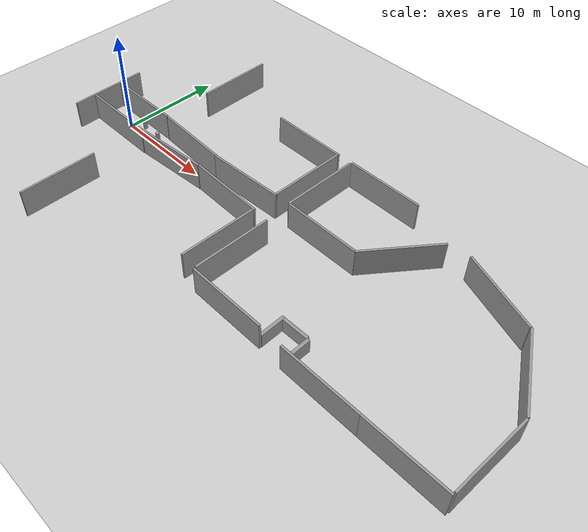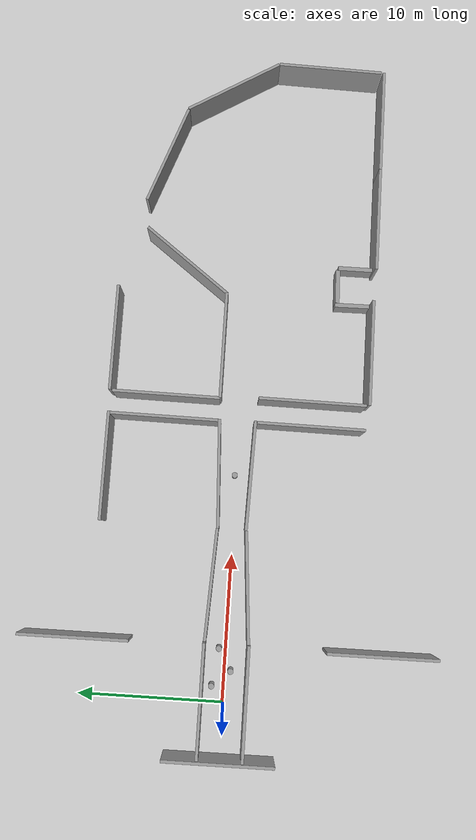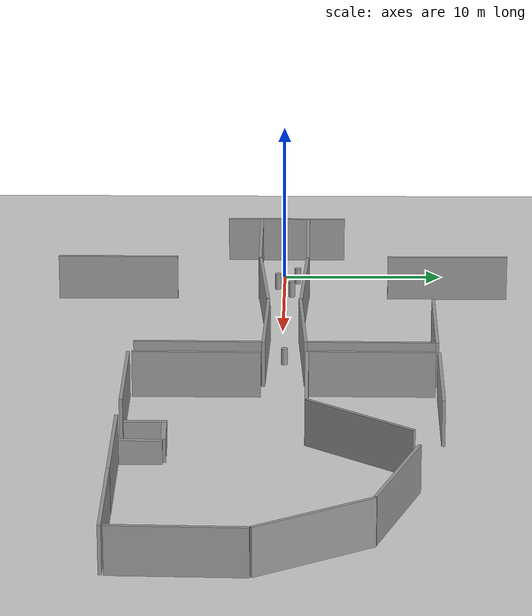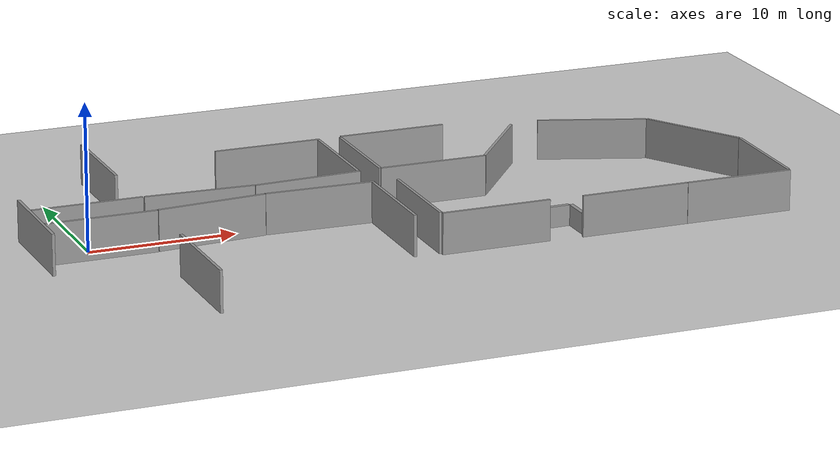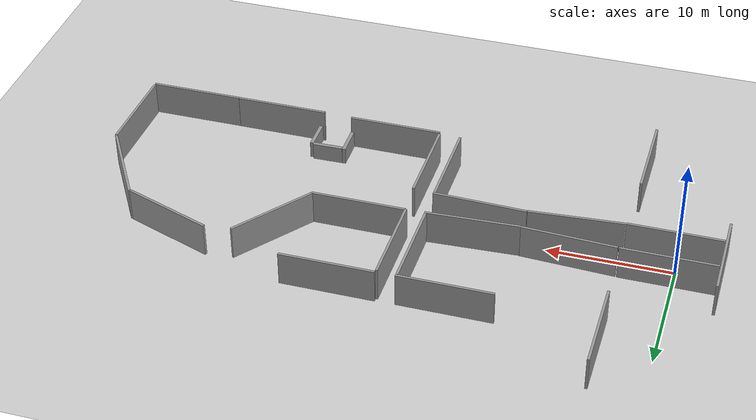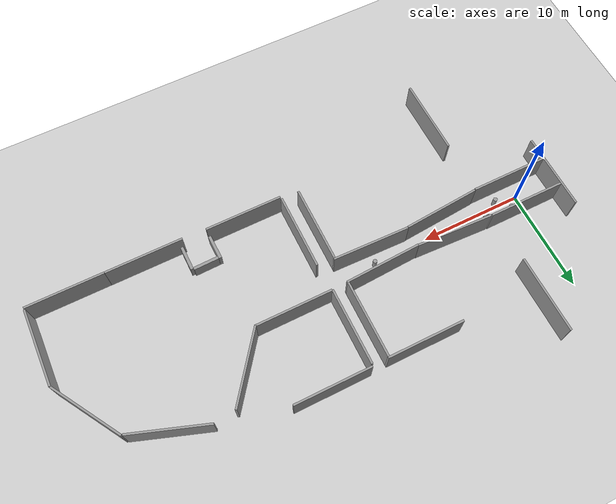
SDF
<sdf version="1.7">
 <world name="default">
  <plugin name="gazebo_ros_state" filename="libgazebo_ros_state.so">
   <ros><namespace>/test</namespace><argument>model_states:=model_states_demo</argument></ros>
   <update_rate>1.0</update_rate>
  </plugin>
  <light name="sun" type="directional">
   <pose>0 0 10 0 -0 0</pose>
   <diffuse>0.8 0.8 0.8 1</diffuse>
   <specular>0.2 0.2 0.2 1</specular>
   <attenuation>
    <range>1000</range>
    <constant>0.9</constant>
    <linear>0.01</linear>
    <quadratic>0.001</quadratic>
   </attenuation>
   <direction>-0.5 0.1 -0.9</direction>
   <spot><inner_angle>0</inner_angle><outer_angle>0</outer_angle><falloff>0</falloff></spot>
  </light>
  <model name="ground_plane">
   <static>1</static>
   <link name="link">
    <collision name="collision">
     <geometry><plane><normal>0 0 1</normal><size>100 100</size></plane></geometry>
     <surface><friction><ode><mu>100</mu><mu2>50</mu2></ode></friction></surface>
    </collision>
    <visual name="visual">
     <cast_shadows>0</cast_shadows>
     <geometry><plane><normal>0 0 1</normal><size>100 100</size></plane></geometry>
     <material>
      <script><uri>file://media/materials/scripts/gazebo.material</uri><name>Gazebo/Grey</name></script>
     </material>
    </visual>
   </link>
  </model>
  <gravity>0 0 -9.8</gravity>
  <magnetic_field>6e-06 2.3e-05 -4.2e-05</magnetic_field>
  <atmosphere type="adiabatic"/>
  <physics type="ode">
   <max_step_size>0.001</max_step_size>
   <real_time_factor>1</real_time_factor>
   <real_time_update_rate>1000</real_time_update_rate>
  </physics>
  <scene><ambient>0.4 0.4 0.4 1</ambient><background>0.7 0.7 0.7 1</background><shadows>0</shadows></scene>
  <spherical_coordinates>
   <surface_model>EARTH_WGS84</surface_model>
   <latitude_deg>0</latitude_deg>
   <longitude_deg>0</longitude_deg>
   <elevation>0</elevation>
   <heading_deg>0</heading_deg>
  </spherical_coordinates>
  <model name="grey_wall">
   <static>1</static>
   <link name="link">
    <pose>0 0 1.4 0 -0 0</pose>
    <collision name="collision"><geometry><box><size>7.5 0.2 2.8</size></box></geometry></collision>
    <visual name="visual">
     <cast_shadows>0</cast_shadows>
     <geometry><box><size>7.5 0.2 2.8</size></box></geometry>
     <material>
      <script>
       <uri>model://grey_wall/materials/scripts</uri>
       <uri>model://grey_wall/materials/textures</uri>
       <name>vrc/grey_wall</name>
      </script>
     </material>
    </visual>
   </link>
   <pose>0.45 1.5 0 0 -0 0</pose>
  </model>
  <model name="grey_wall_clone">
   <static>1</static>
   <link name="link">
    <pose>0 0 1.4 0 -0 0</pose>
    <collision name="collision"><geometry><box><size>7.5 0.2 2.8</size></box></geometry></collision>
    <visual name="visual">
     <cast_shadows>0</cast_shadows>
     <geometry><box><size>7.5 0.2 2.8</size></box></geometry>
     <material>
      <script>
       <uri>model://grey_wall/materials/scripts</uri>
       <uri>model://grey_wall/materials/textures</uri>
       <name>vrc/grey_wall</name>
      </script>
     </material>
    </visual>
   </link>
   <pose>0.45 -1.5 0 0 -0 0</pose>
  </model>
  <model name="grey_wall_clone_0">
   <static>1</static>
   <link name="link">
    <pose>0 0 1.4 0 -0 0</pose>
    <collision name="collision"><geometry><box><size>7.5 0.2 2.8</size></box></geometry></collision>
    <visual name="visual">
     <cast_shadows>0</cast_shadows>
     <geometry><box><size>7.5 0.2 2.8</size></box></geometry>
     <material>
      <script>
       <uri>model://grey_wall/materials/scripts</uri>
       <uri>model://grey_wall/materials/textures</uri>
       <name>vrc/grey_wall</name>
      </script>
     </material>
    </visual>
   </link>
   <pose>8.0405 1.2886 0 0 0 -0.048757</pose>
  </model>
  <model name="grey_wall_clone_1">
   <static>1</static>
   <link name="link">
    <pose>0 0 1.4 0 -0 0</pose>
    <collision name="collision"><geometry><box><size>7.5 0.2 2.8</size></box></geometry></collision>
    <visual name="visual">
     <cast_shadows>0</cast_shadows>
     <geometry><box><size>7.5 0.2 2.8</size></box></geometry>
     <material>
      <script>
       <uri>model://grey_wall/materials/scripts</uri>
       <uri>model://grey_wall/materials/textures</uri>
       <name>vrc/grey_wall</name>
      </script>
     </material>
    </visual>
   </link>
   <pose>7.99265 -1.17223 0 0 -0 0.076229</pose>
  </model>
  <model name="grey_wall_clone_2">
   <static>1</static>
   <link name="link">
    <pose>0 0 1.4 0 -0 0</pose>
    <collision name="collision"><geometry><box><size>7.5 0.2 2.8</size></box></geometry></collision>
    <visual name="visual">
     <cast_shadows>0</cast_shadows>
     <geometry><box><size>7.5 0.2 2.8</size></box></geometry>
     <material>
      <script>
       <uri>model://grey_wall/materials/scripts</uri>
       <uri>model://grey_wall/materials/textures</uri>
       <name>vrc/grey_wall</name>
      </script>
     </material>
    </visual>
   </link>
   <pose>15.4908 1.24997 0 0 -0 0.047505</pose>
  </model>
  <model name="grey_wall_clone_3">
   <static>1</static>
   <link name="link">
    <pose>0 0 1.4 0 -0 0</pose>
    <collision name="collision"><geometry><box><size>7.5 0.2 2.8</size></box></geometry></collision>
    <visual name="visual">
     <cast_shadows>0</cast_shadows>
     <geometry><box><size>7.5 0.2 2.8</size></box></geometry>
     <material>
      <script>
       <uri>model://grey_wall/materials/scripts</uri>
       <uri>model://grey_wall/materials/textures</uri>
       <name>vrc/grey_wall</name>
      </script>
     </material>
    </visual>
   </link>
   <pose>15.5134 -0.959954 0 0 0 -0.028174</pose>
  </model>
  <model name="grey_wall_clone_4">
   <static>1</static>
   <link name="link">
    <pose>0 0 1.4 0 -0 0</pose>
    <collision name="collision"><geometry><box><size>7.5 0.2 2.8</size></box></geometry></collision>
    <visual name="visual">
     <cast_shadows>0</cast_shadows>
     <geometry><box><size>7.5 0.2 2.8</size></box></geometry>
     <material>
      <script>
       <uri>model://grey_wall/materials/scripts</uri>
       <uri>model://grey_wall/materials/textures</uri>
       <name>vrc/grey_wall</name>
      </script>
     </material>
    </visual>
   </link>
   <pose>19.1831 5.27057 0 0 0 -1.58093</pose>
  </model>
  <model name="grey_wall_clone_4_clone">
   <static>1</static>
   <link name="link">
    <pose>0 0 1.4 0 -0 0</pose>
    <collision name="collision"><geometry><box><size>7.5 0.2 2.8</size></box></geometry></collision>
    <visual name="visual">
     <cast_shadows>0</cast_shadows>
     <geometry><box><size>7.5 0.2 2.8</size></box></geometry>
     <material>
      <script>
       <uri>model://grey_wall/materials/scripts</uri>
       <uri>model://grey_wall/materials/textures</uri>
       <name>vrc/grey_wall</name>
      </script>
     </material>
    </visual>
   </link>
   <pose>19.1157 -4.93014 0 0 0 -1.58093</pose>
  </model>
  <model name="grey_wall_clone_4_clone_0">
   <static>1</static>
   <link name="link">
    <pose>0 0 1.4 0 -0 0</pose>
    <collision name="collision"><geometry><box><size>7.5 0.2 2.8</size></box></geometry></collision>
    <visual name="visual">
     <cast_shadows>0</cast_shadows>
     <geometry><box><size>7.5 0.2 2.8</size></box></geometry>
     <material>
      <script>
       <uri>model://grey_wall/materials/scripts</uri>
       <uri>model://grey_wall/materials/textures</uri>
       <name>vrc/grey_wall</name>
      </script>
     </material>
    </visual>
   </link>
   <pose>20.84 -4.94754 0 0 0 -1.58093</pose>
  </model>
  <model name="grey_wall_clone_4_clone_1">
   <static>1</static>
   <link name="link">
    <pose>0 0 1.4 0 -0 0</pose>
    <collision name="collision"><geometry><box><size>7.5 0.2 2.8</size></box></geometry></collision>
    <visual name="visual">
     <cast_shadows>0</cast_shadows>
     <geometry><box><size>7.5 0.2 2.8</size></box></geometry>
     <material>
      <script>
       <uri>model://grey_wall/materials/scripts</uri>
       <uri>model://grey_wall/materials/textures</uri>
       <name>vrc/grey_wall</name>
      </script>
     </material>
    </visual>
   </link>
   <pose>20.75 5.25 0 0 0 -1.58093</pose>
  </model>
  <model name="grey_wall_clone_3_clone">
   <static>1</static>
   <link name="link">
    <pose>0 0 1.4 0 -0 0</pose>
    <collision name="collision"><geometry><box><size>7.5 0.2 2.8</size></box></geometry></collision>
    <visual name="visual">
     <cast_shadows>0</cast_shadows>
     <geometry><box><size>7.5 0.2 2.8</size></box></geometry>
     <material>
      <script>
       <uri>model://grey_wall/materials/scripts</uri>
       <uri>model://grey_wall/materials/textures</uri>
       <name>vrc/grey_wall</name>
      </script>
     </material>
    </visual>
   </link>
   <pose>24.5989 -8.90216 0 0 -0 0</pose>
  </model>
  <model name="grey_wall_clone_3_clone_0">
   <static>1</static>
   <link name="link">
    <pose>0 0 1.4 0 -0 0</pose>
    <collision name="collision"><geometry><box><size>7.5 0.2 2.8</size></box></geometry></collision>
    <visual name="visual">
     <cast_shadows>0</cast_shadows>
     <geometry><box><size>7.5 0.2 2.8</size></box></geometry>
     <material>
      <script>
       <uri>model://grey_wall/materials/scripts</uri>
       <uri>model://grey_wall/materials/textures</uri>
       <name>vrc/grey_wall</name>
      </script>
     </material>
    </visual>
   </link>
   <pose>24.5 1.496 0 0 -0 0</pose>
  </model>
  <model name="grey_wall_clone_5">
   <static>1</static>
   <link name="link">
    <pose>0 0 1.4 0 -0 0</pose>
    <collision name="collision"><geometry><box><size>7.5 0.2 2.8</size></box></geometry></collision>
    <visual name="visual">
     <cast_shadows>0</cast_shadows>
     <geometry><box><size>7.5 0.2 2.8</size></box></geometry>
     <material>
      <script>
       <uri>model://grey_wall/materials/scripts</uri>
       <uri>model://grey_wall/materials/textures</uri>
       <name>vrc/grey_wall</name>
      </script>
     </material>
    </visual>
   </link>
   <pose>30.4598 4.43716 0 0 -0 0.920275</pose>
  </model>
  <model name="grey_wall_clone_3_clone_clone_clone">
   <static>1</static>
   <link name="link">
    <pose>0 0 1.4 0 -0 0</pose>
    <collision name="collision"><geometry><box><size>7.5 0.2 2.8</size></box></geometry></collision>
    <visual name="visual">
     <cast_shadows>0</cast_shadows>
     <geometry><box><size>7.5 0.2 2.8</size></box></geometry>
     <material>
      <script>
       <uri>model://grey_wall/materials/scripts</uri>
       <uri>model://grey_wall/materials/textures</uri>
       <name>vrc/grey_wall</name>
      </script>
     </material>
    </visual>
   </link>
   <pose>34.3949 -9.00663 0 0 -0 0</pose>
  </model>
  <model name="grey_wall_clone_5_clone">
   <static>1</static>
   <link name="link">
    <pose>0 0 1.4 0 -0 0</pose>
    <collision name="collision"><geometry><box><size>7.5 0.2 2.8</size></box></geometry></collision>
    <visual name="visual">
     <cast_shadows>0</cast_shadows>
     <geometry><box><size>7.5 0.2 2.8</size></box></geometry>
     <material>
      <script>
       <uri>model://grey_wall/materials/scripts</uri>
       <uri>model://grey_wall/materials/textures</uri>
       <name>vrc/grey_wall</name>
      </script>
     </material>
    </visual>
   </link>
   <pose>38.3396 6.3954 0 0 0 -0.342462</pose>
  </model>
  <model name="grey_wall_clone_3_clone_clone_clone_clone">
   <static>1</static>
   <link name="link">
    <pose>0 0 1.4 0 -0 0</pose>
    <collision name="collision"><geometry><box><size>7.5 0.2 2.8</size></box></geometry></collision>
    <visual name="visual">
     <cast_shadows>0</cast_shadows>
     <geometry><box><size>7.5 0.2 2.8</size></box></geometry>
     <material>
      <script>
       <uri>model://grey_wall/materials/scripts</uri>
       <uri>model://grey_wall/materials/textures</uri>
       <name>vrc/grey_wall</name>
      </script>
     </material>
    </visual>
   </link>
   <pose>43.8876 1.94202 0 0 0 -1.02844</pose>
  </model>
  <model name="grey_wall_clone_3_clone_clone_clone_clone_2">
   <static>1</static>
   <link name="link">
    <pose>0 0 1.4 0 -0 0</pose>
    <collision name="collision"><geometry><box><size>7.5 0.2 2.8</size></box></geometry></collision>
    <visual name="visual">
     <cast_shadows>0</cast_shadows>
     <geometry><box><size>7.5 0.2 2.8</size></box></geometry>
     <material>
      <script>
       <uri>model://grey_wall/materials/scripts</uri>
       <uri>model://grey_wall/materials/textures</uri>
       <name>vrc/grey_wall</name>
      </script>
     </material>
    </visual>
   </link>
   <pose>45.7411 -5.07625 0 0 -0 1.54097</pose>
  </model>
  <model name="grey_wall_0">
   <static>1</static>
   <link name="link">
    <pose>0 0 1.4 0 -0 0</pose>
    <collision name="collision"><geometry><box><size>7.5 0.2 2.8</size></box></geometry></collision>
    <visual name="visual">
     <cast_shadows>0</cast_shadows>
     <geometry><box><size>7.5 0.2 2.8</size></box></geometry>
     <material>
      <script>
       <uri>model://grey_wall/materials/scripts</uri>
       <uri>model://grey_wall/materials/textures</uri>
       <name>vrc/grey_wall</name>
      </script>
     </material>
    </visual>
   </link>
   <pose>24.6039 9.1936 0 0 -0 0</pose>
  </model>
  <model name="grey_wall_clone_4_clone_clone">
   <static>1</static>
   <link name="link">
    <pose>0 0 1.4 0 -0 0</pose>
    <collision name="collision"><geometry><box><size>7.5 0.2 2.8</size></box></geometry></collision>
    <visual name="visual">
     <cast_shadows>0</cast_shadows>
     <geometry><box><size>7.5 0.2 2.8</size></box></geometry>
     <material>
      <script>
       <uri>model://grey_wall/materials/scripts</uri>
       <uri>model://grey_wall/materials/textures</uri>
       <name>vrc/grey_wall</name>
      </script>
     </material>
    </visual>
   </link>
   <pose>-3.42198 0.097688 0 0 0 -1.5684</pose>
  </model>
  <model name="grey_wall_clone_3_clone_clone_clone_clone_3">
   <static>1</static>
   <link name="link">
    <pose>0 0 1.4 0 -0 0</pose>
    <collision name="collision"><geometry><box><size>7.5 0.2 2.8</size></box></geometry></collision>
    <visual name="visual">
     <cast_shadows>0</cast_shadows>
     <geometry><box><size>7.5 0.2 2.8</size></box></geometry>
     <material>
      <script>
       <uri>model://grey_wall/materials/scripts</uri>
       <uri>model://grey_wall/materials/textures</uri>
       <name>vrc/grey_wall</name>
      </script>
     </material>
    </visual>
   </link>
   <pose>41.9009 -9.0149 0 0 -0 0</pose>
  </model>
  <model name="grey_wall_clone_4_clone_clone_clone">
   <static>1</static>
   <link name="link">
    <pose>0 0 1.4 0 -0 0</pose>
    <collision name="collision"><geometry><box><size>7.5 0.2 2.8</size></box></geometry></collision>
    <visual name="visual">
     <cast_shadows>0</cast_shadows>
     <geometry><box><size>7.5 0.2 2.8</size></box></geometry>
     <material>
      <script>
       <uri>model://grey_wall/materials/scripts</uri>
       <uri>model://grey_wall/materials/textures</uri>
       <name>vrc/grey_wall</name>
      </script>
     </material>
    </visual>
   </link>
   <pose>4.01935 10.2742 0 0 0 -1.5684</pose>
  </model>
  <model name="grey_wall_clone_4_clone_clone_clone_clone">
   <static>1</static>
   <link name="link">
    <pose>0 0 1.4 0 -0 0</pose>
    <collision name="collision"><geometry><box><size>7.5 0.2 2.8</size></box></geometry></collision>
    <visual name="visual">
     <cast_shadows>0</cast_shadows>
     <geometry><box><size>7.5 0.2 2.8</size></box></geometry>
     <material>
      <script>
       <uri>model://grey_wall/materials/scripts</uri>
       <uri>model://grey_wall/materials/textures</uri>
       <name>vrc/grey_wall</name>
      </script>
     </material>
    </visual>
   </link>
   <pose>4.02069 -10.441 0 0 0 -1.5684</pose>
  </model>
  <model name="grey_wall_0_clone">
   <static>1</static>
   <link name="link">
    <pose>0 0 1.4 0 -0 0</pose>
    <collision name="collision"><geometry><box><size>7.5 0.2 2.8</size></box></geometry></collision>
    <visual name="visual">
     <cast_shadows>0</cast_shadows>
     <geometry><box><size>7.5 0.2 2.8</size></box></geometry>
     <material>
      <script>
       <uri>model://grey_wall/materials/scripts</uri>
       <uri>model://grey_wall/materials/textures</uri>
       <name>vrc/grey_wall</name>
      </script>
     </material>
    </visual>
   </link>
   <pose>15.571 9.12885 0 0 -0 0</pose>
  </model>
  <model name="unit_box_clone_0">
   <static>1</static>
   <pose>30.9687 -7.67485 0.710181 1e-06 -2e-05 -1.57248</pose>
   <link name="link">
    <inertial>
     <mass>1</mass>
     <inertia>
      <ixx>0.166667</ixx>
      <ixy>0</ixy>
      <ixz>0</ixz>
      <iyy>0.166667</iyy>
      <iyz>0</iyz>
      <izz>0.166667</izz>
     </inertia>
    </inertial>
    <collision name="collision"><geometry><box><size>2.44271 0.295039 1.42041</size></box></geometry></collision>
    <visual name="visual">
     <geometry><box><size>2.44271 0.295039 1.42041</size></box></geometry>
     <material>
      <script><name>Gazebo/Grey</name><uri>file://media/materials/scripts/gazebo.material</uri></script>
     </material>
    </visual>
   </link>
  </model>
  <model name="unit_box_clone_0_clone">
   <static>1</static>
   <pose>28.2223 -7.54904 0.710181 1e-06 2e-05 -1.56178</pose>
   <link name="link">
    <inertial>
     <mass>1</mass>
     <inertia>
      <ixx>0.166667</ixx>
      <ixy>0</ixy>
      <ixz>0</ixz>
      <iyy>0.166667</iyy>
      <iyz>0</iyz>
      <izz>0.166667</izz>
     </inertia>
    </inertial>
    <collision name="collision"><geometry><box><size>2.44271 0.295039 1.42041</size></box></geometry></collision>
    <visual name="visual">
     <geometry><box><size>2.44271 0.295039 1.42041</size></box></geometry>
     <material>
      <script><name>Gazebo/Grey</name><uri>file://media/materials/scripts/gazebo.material</uri></script>
     </material>
    </visual>
   </link>
  </model>
  <model name="unit_cylinder_clone">
   <static>1</static>
   <pose>15.553 0.134356 0.499997 0 -0 1e-06</pose>
   <link name="link">
    <inertial>
     <mass>1</mass>
     <inertia><ixx>0.145833</ixx><ixy>0</ixy><ixz>0</ixz><iyy>0.145833</iyy><iyz>0</iyz><izz>0.125</izz></inertia>
    </inertial>
    <collision name="collision">
     <geometry><cylinder><radius>0.201027</radius><length>1</length></cylinder></geometry>
    </collision>
    <visual name="visual">
     <geometry><cylinder><radius>0.201027</radius><length>1</length></cylinder></geometry>
     <material>
      <script><name>Gazebo/Grey</name><uri>file://media/materials/scripts/gazebo.material</uri></script>
     </material>
    </visual>
   </link>
  </model>
  <model name="unit_cylinder_clone_clone">
   <static>1</static>
   <pose>3.66817 0.484299 0.499997 0 -0 1e-06</pose>
   <link name="link">
    <inertial>
     <mass>1</mass>
     <inertia><ixx>0.145833</ixx><ixy>0</ixy><ixz>0</ixz><iyy>0.145833</iyy><iyz>0</iyz><izz>0.125</izz></inertia>
    </inertial>
    <collision name="collision">
     <geometry><cylinder><radius>0.201027</radius><length>1</length></cylinder></geometry>
    </collision>
    <visual name="visual">
     <geometry><cylinder><radius>0.201027</radius><length>1</length></cylinder></geometry>
     <material>
      <script><name>Gazebo/Grey</name><uri>file://media/materials/scripts/gazebo.material</uri></script>
     </material>
    </visual>
   </link>
  </model>
  <model name="unit_cylinder_clone_clone_0">
   <static>1</static>
   <pose>2.21095 -0.40186 0.499997 0 -0 1e-06</pose>
   <link name="link">
    <inertial>
     <mass>1</mass>
     <inertia><ixx>0.145833</ixx><ixy>0</ixy><ixz>0</ixz><iyy>0.145833</iyy><iyz>0</iyz><izz>0.125</izz></inertia>
    </inertial>
    <collision name="collision">
     <geometry><cylinder><radius>0.201027</radius><length>1</length></cylinder></geometry>
    </collision>
    <visual name="visual">
     <geometry><cylinder><radius>0.201027</radius><length>1</length></cylinder></geometry>
     <material>
      <script><name>Gazebo/Grey</name><uri>file://media/materials/scripts/gazebo.material</uri></script>
     </material>
    </visual>
   </link>
  </model>
  <model name="unit_cylinder_clone_clone_1">
   <static>1</static>
   <pose>1.1774 0.841659 0.499997 0 -0 1e-06</pose>
   <link name="link">
    <inertial>
     <mass>1</mass>
     <inertia><ixx>0.145833</ixx><ixy>0</ixy><ixz>0</ixz><iyy>0.145833</iyy><iyz>0</iyz><izz>0.125</izz></inertia>
    </inertial>
    <collision name="collision">
     <geometry><cylinder><radius>0.201027</radius><length>1</length></cylinder></geometry>
    </collision>
    <visual name="visual">
     <geometry><cylinder><radius>0.201027</radius><length>1</length></cylinder></geometry>
     <material>
      <script><name>Gazebo/Grey</name><uri>file://media/materials/scripts/gazebo.material</uri></script>
     </material>
    </visual>
   </link>
  </model>
  <model name="unit_box_clone_0_clone_clone_clone">
   <static>1</static>
   <pose>29.5959 -6.4503 0.710181 -1e-06 2e-05 -3.12194</pose>
   <link name="link">
    <inertial>
     <mass>1</mass>
     <inertia>
      <ixx>0.166667</ixx>
      <ixy>0</ixy>
      <ixz>0</ixz>
      <iyy>0.166667</iyy>
      <iyz>0</iyz>
      <izz>0.166667</izz>
     </inertia>
    </inertial>
    <collision name="collision"><geometry><box><size>2.44271 0.295039 1.42041</size></box></geometry></collision>
    <visual name="visual">
     <geometry><box><size>2.44271 0.295039 1.42041</size></box></geometry>
     <material>
      <script><name>Gazebo/Grey</name><uri>file://media/materials/scripts/gazebo.material</uri></script>
     </material>
    </visual>
   </link>
  </model>
 </world>
</sdf>
